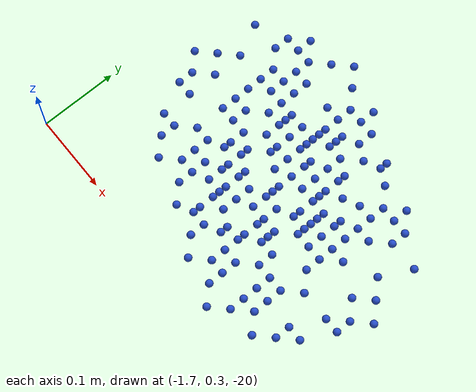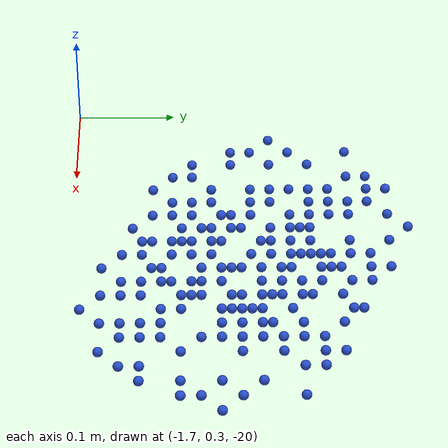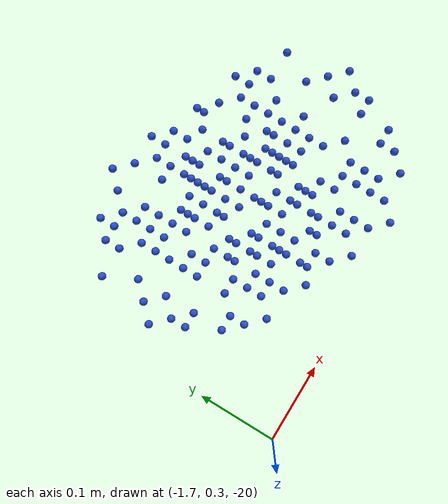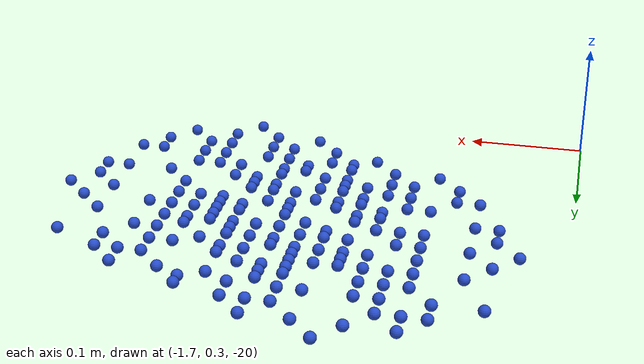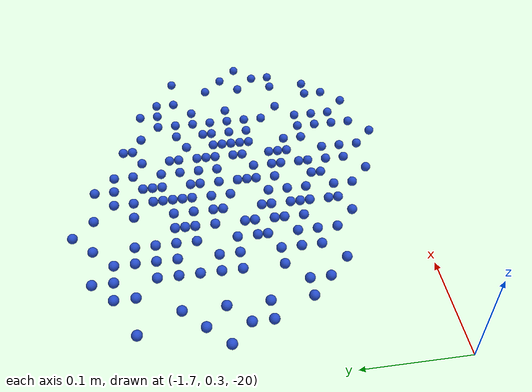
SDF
<sdf version="1.7">
 <model name="Washbasin_Water">
  <static>true</static>
  <link name="washbasin_water_inl">
   <pose>-1.52 0.5 -20 0 0 0</pose>
   <visual name="green_mark_centre1_visual">
    <geometry><sphere><radius>0.005</radius></sphere></geometry>
    <material><script><name>Gazebo/BlueGlow</name></script></material>
   </visual>
   <visual name="green_mark_centre2_visual">
    <pose>0.02 0 0 0 0 0</pose>
    <geometry><sphere><radius>0.005</radius></sphere></geometry>
    <material><script><name>Gazebo/BlueGlow</name></script></material>
   </visual>
   <visual name="green_mark_centre4_visual">
    <pose>0.04 0 0 0 0 0</pose>
    <geometry><sphere><radius>0.005</radius></sphere></geometry>
    <material><script><name>Gazebo/BlueGlow</name></script></material>
   </visual>
   <visual name="green_mark_centre5_visual">
    <pose>-0.04 0 0 0 0 0</pose>
    <geometry><sphere><radius>0.005</radius></sphere></geometry>
    <material><script><name>Gazebo/BlueGlow</name></script></material>
   </visual>
   <visual name="green_mark_centre7_visual">
    <pose>-0.06 0 0 0 0 0</pose>
    <geometry><sphere><radius>0.005</radius></sphere></geometry>
    <material><script><name>Gazebo/BlueGlow</name></script></material>
   </visual>
   <visual name="green_mark_centre8_visual">
    <pose>0 0.02 0 0 0 0</pose>
    <geometry><sphere><radius>0.005</radius></sphere></geometry>
    <material><script><name>Gazebo/BlueGlow</name></script></material>
   </visual>
   <visual name="green_mark_centre10_visual">
    <pose>0 0.04 0 0 0 0</pose>
    <geometry><sphere><radius>0.005</radius></sphere></geometry>
    <material><script><name>Gazebo/BlueGlow</name></script></material>
   </visual>
   <visual name="green_mark_centre11_visual">
    <pose>0 -0.04 0 0 0 0</pose>
    <geometry><sphere><radius>0.005</radius></sphere></geometry>
    <material><script><name>Gazebo/BlueGlow</name></script></material>
   </visual>
   <visual name="green_mark_centre13_visual">
    <pose>0 -0.06 0 0 0 0</pose>
    <geometry><sphere><radius>0.005</radius></sphere></geometry>
    <material><script><name>Gazebo/BlueGlow</name></script></material>
   </visual>
   <visual name="green_mark_centre14_visual">
    <pose>0.02 0.02 0 0 0 0</pose>
    <geometry><sphere><radius>0.005</radius></sphere></geometry>
    <material><script><name>Gazebo/BlueGlow</name></script></material>
   </visual>
   <visual name="green_mark_centre16_visual">
    <pose>-0.02 -0.02 0 0 0 0</pose>
    <geometry><sphere><radius>0.005</radius></sphere></geometry>
    <material><script><name>Gazebo/BlueGlow</name></script></material>
   </visual>
   <visual name="green_mark_centre17_visual">
    <pose>-0.02 0.02 0 0 0 0</pose>
    <geometry><sphere><radius>0.005</radius></sphere></geometry>
    <material><script><name>Gazebo/BlueGlow</name></script></material>
   </visual>
   <visual name="green_mark_centre19_visual">
    <pose>0.04 0.04 0 0 0 0</pose>
    <geometry><sphere><radius>0.005</radius></sphere></geometry>
    <material><script><name>Gazebo/BlueGlow</name></script></material>
   </visual>
   <visual name="green_mark_centre20_visual">
    <pose>-0.04 0.04 0 0 0 0</pose>
    <geometry><sphere><radius>0.005</radius></sphere></geometry>
    <material><script><name>Gazebo/BlueGlow</name></script></material>
   </visual>
   <visual name="green_mark_centre22_visual">
    <pose>0.04 0.06 0 0 0 0</pose>
    <geometry><sphere><radius>0.005</radius></sphere></geometry>
    <material><script><name>Gazebo/BlueGlow</name></script></material>
   </visual>
   <visual name="green_mark_centre23_visual">
    <pose>0.04 -0.06 0 0 0 0</pose>
    <geometry><sphere><radius>0.005</radius></sphere></geometry>
    <material><script><name>Gazebo/BlueGlow</name></script></material>
   </visual>
   <visual name="green_mark_centre25_visual">
    <pose>-0.04 0.06 0 0 0 0</pose>
    <geometry><sphere><radius>0.005</radius></sphere></geometry>
    <material><script><name>Gazebo/BlueGlow</name></script></material>
   </visual>
   <visual name="green_mark_centre26_visual">
    <pose>-0.04 -0.06 0 0 0 0</pose>
    <geometry><sphere><radius>0.005</radius></sphere></geometry>
    <material><script><name>Gazebo/BlueGlow</name></script></material>
   </visual>
   <visual name="green_mark_centre28_visual">
    <pose>0.06 0.06 0 0 0 0</pose>
    <geometry><sphere><radius>0.005</radius></sphere></geometry>
    <material><script><name>Gazebo/BlueGlow</name></script></material>
   </visual>
   <visual name="green_mark_centre29_visual">
    <pose>-0.06 0.06 0 0 0 0</pose>
    <geometry><sphere><radius>0.005</radius></sphere></geometry>
    <material><script><name>Gazebo/BlueGlow</name></script></material>
   </visual>
   <visual name="green_mark_centre31_visual">
    <pose>-0.06 -0.06 0 0 0 0</pose>
    <geometry><sphere><radius>0.005</radius></sphere></geometry>
    <material><script><name>Gazebo/BlueGlow</name></script></material>
   </visual>
   <visual name="green_mark_centre32_visual">
    <pose>0.02 0.04 0 0 0 0</pose>
    <geometry><sphere><radius>0.005</radius></sphere></geometry>
    <material><script><name>Gazebo/BlueGlow</name></script></material>
   </visual>
   <visual name="green_mark_centre34_visual">
    <pose>-0.02 0.04 0 0 0 0</pose>
    <geometry><sphere><radius>0.005</radius></sphere></geometry>
    <material><script><name>Gazebo/BlueGlow</name></script></material>
   </visual>
   <visual name="green_mark_centre35_visual">
    <pose>-0.02 -0.04 0 0 0 0</pose>
    <geometry><sphere><radius>0.005</radius></sphere></geometry>
    <material><script><name>Gazebo/BlueGlow</name></script></material>
   </visual>
   <visual name="green_mark_centre37_visual">
    <pose>0.02 -0.06 0 0 0 0</pose>
    <geometry><sphere><radius>0.005</radius></sphere></geometry>
    <material><script><name>Gazebo/BlueGlow</name></script></material>
   </visual>
   <visual name="green_mark_centre38_visual">
    <pose>-0.02 0.06 0 0 0 0</pose>
    <geometry><sphere><radius>0.005</radius></sphere></geometry>
    <material><script><name>Gazebo/BlueGlow</name></script></material>
   </visual>
   <visual name="green_mark_centre40_visual">
    <pose>0.04 0.02 0 0 0 0</pose>
    <geometry><sphere><radius>0.005</radius></sphere></geometry>
    <material><script><name>Gazebo/BlueGlow</name></script></material>
   </visual>
   <visual name="green_mark_centre41_visual">
    <pose>0.04 -0.02 0 0 0 0</pose>
    <geometry><sphere><radius>0.005</radius></sphere></geometry>
    <material><script><name>Gazebo/BlueGlow</name></script></material>
   </visual>
   <visual name="green_mark_centre43_visual">
    <pose>-0.04 -0.02 0 0 0 0</pose>
    <geometry><sphere><radius>0.005</radius></sphere></geometry>
    <material><script><name>Gazebo/BlueGlow</name></script></material>
   </visual>
   <visual name="green_mark_centre44_visual">
    <pose>0.06 0.02 0 0 0 0</pose>
    <geometry><sphere><radius>0.005</radius></sphere></geometry>
    <material><script><name>Gazebo/BlueGlow</name></script></material>
   </visual>
   <visual name="green_mark_centre46_visual">
    <pose>-0.06 0.02 0 0 0 0</pose>
    <geometry><sphere><radius>0.005</radius></sphere></geometry>
    <material><script><name>Gazebo/BlueGlow</name></script></material>
   </visual>
   <visual name="green_mark_centre47_visual">
    <pose>-0.06 -0.02 0 0 0 0</pose>
    <geometry><sphere><radius>0.005</radius></sphere></geometry>
    <material><script><name>Gazebo/BlueGlow</name></script></material>
   </visual>
   <visual name="green_mark_centre49_visual">
    <pose>0.06 -0.04 0 0 0 0</pose>
    <geometry><sphere><radius>0.005</radius></sphere></geometry>
    <material><script><name>Gazebo/BlueGlow</name></script></material>
   </visual>
   <visual name="green_mark_centre50_visual">
    <pose>-0.06 0.04 0 0 0 0</pose>
    <geometry><sphere><radius>0.005</radius></sphere></geometry>
    <material><script><name>Gazebo/BlueGlow</name></script></material>
   </visual>
   <visual name="green_mark_top1_visual">
    <pose>-0.06 0.12 0 0 0 0</pose>
    <geometry><sphere><radius>0.005</radius></sphere></geometry>
    <material><script><name>Gazebo/BlueGlow</name></script></material>
   </visual>
   <visual name="green_mark_top2_visual">
    <pose>-0.06 0.10 0 0 0 0</pose>
    <geometry><sphere><radius>0.005</radius></sphere></geometry>
    <material><script><name>Gazebo/BlueGlow</name></script></material>
   </visual>
   <visual name="green_mark_top4_visual">
    <pose>-0.04 0.10 0 0 0 0</pose>
    <geometry><sphere><radius>0.005</radius></sphere></geometry>
    <material><script><name>Gazebo/BlueGlow</name></script></material>
   </visual>
   <visual name="green_mark_top7_visual">
    <pose>-0.04 0.08 0 0 0 0</pose>
    <geometry><sphere><radius>0.005</radius></sphere></geometry>
    <material><script><name>Gazebo/BlueGlow</name></script></material>
   </visual>
   <visual name="green_mark_top8_visual">
    <pose>-0.02 0.12 0 0 0 0</pose>
    <geometry><sphere><radius>0.005</radius></sphere></geometry>
    <material><script><name>Gazebo/BlueGlow</name></script></material>
   </visual>
   <visual name="green_mark_top10_visual">
    <pose>-0.02 0.12 0 0 0 0</pose>
    <geometry><sphere><radius>0.005</radius></sphere></geometry>
    <material><script><name>Gazebo/BlueGlow</name></script></material>
   </visual>
   <visual name="green_mark_top12_visual">
    <pose>-0.02 0.08 0 0 0 0</pose>
    <geometry><sphere><radius>0.005</radius></sphere></geometry>
    <material><script><name>Gazebo/BlueGlow</name></script></material>
   </visual>
   <visual name="green_mark_top14_visual">
    <pose>0.06 0.12 0 0 0 0</pose>
    <geometry><sphere><radius>0.005</radius></sphere></geometry>
    <material><script><name>Gazebo/BlueGlow</name></script></material>
   </visual>
   <visual name="green_mark_top15_visual">
    <pose>0.06 0.10 0 0 0 0</pose>
    <geometry><sphere><radius>0.005</radius></sphere></geometry>
    <material><script><name>Gazebo/BlueGlow</name></script></material>
   </visual>
   <visual name="green_mark_top17_visual">
    <pose>0.04 0.10 0 0 0 0</pose>
    <geometry><sphere><radius>0.005</radius></sphere></geometry>
    <material><script><name>Gazebo/BlueGlow</name></script></material>
   </visual>
   <visual name="green_mark_top20_visual">
    <pose>0.04 0.08 0 0 0 0</pose>
    <geometry><sphere><radius>0.005</radius></sphere></geometry>
    <material><script><name>Gazebo/BlueGlow</name></script></material>
   </visual>
   <visual name="green_mark_top21_visual">
    <pose>0.02 0.12 0 0 0 0</pose>
    <geometry><sphere><radius>0.005</radius></sphere></geometry>
    <material><script><name>Gazebo/BlueGlow</name></script></material>
   </visual>
   <visual name="green_mark_top23_visual">
    <pose>0.02 0.12 0 0 0 0</pose>
    <geometry><sphere><radius>0.005</radius></sphere></geometry>
    <material><script><name>Gazebo/BlueGlow</name></script></material>
   </visual>
   <visual name="green_mark_top25_visual">
    <pose>0.02 0.08 0 0 0 0</pose>
    <geometry><sphere><radius>0.005</radius></sphere></geometry>
    <material><script><name>Gazebo/BlueGlow</name></script></material>
   </visual>
   <visual name="green_mark_top88_visual">
    <pose>0.0 0.14 0 0 0 0</pose>
    <geometry><sphere><radius>0.005</radius></sphere></geometry>
    <material><script><name>Gazebo/BlueGlow</name></script></material>
   </visual>
   <visual name="green_mark_top89_visual">
    <pose>0.0 -0.14 0 0 0 0</pose>
    <geometry><sphere><radius>0.005</radius></sphere></geometry>
    <material><script><name>Gazebo/BlueGlow</name></script></material>
   </visual>
   <visual name="green_mark_top3_visual">
    <pose>-0.06 -0.12 0 0 0 0</pose>
    <geometry><sphere><radius>0.005</radius></sphere></geometry>
    <material><script><name>Gazebo/BlueGlow</name></script></material>
   </visual>
   <visual name="green_mark_top5_visual">
    <pose>-0.04 -0.10 0 0 0 0</pose>
    <geometry><sphere><radius>0.005</radius></sphere></geometry>
    <material><script><name>Gazebo/BlueGlow</name></script></material>
   </visual>
   <visual name="green_mark_top6_visual">
    <pose>-0.04 -0.08 0 0 0 0</pose>
    <geometry><sphere><radius>0.005</radius></sphere></geometry>
    <material><script><name>Gazebo/BlueGlow</name></script></material>
   </visual>
   <visual name="green_mark_top9_visual">
    <pose>-0.02 -0.12 0 0 0 0</pose>
    <geometry><sphere><radius>0.005</radius></sphere></geometry>
    <material><script><name>Gazebo/BlueGlow</name></script></material>
   </visual>
   <visual name="green_mark_top11_visual">
    <pose>-0.02 -0.10 0 0 0 0</pose>
    <geometry><sphere><radius>0.005</radius></sphere></geometry>
    <material><script><name>Gazebo/BlueGlow</name></script></material>
   </visual>
   <visual name="green_mark_top13_visual">
    <pose>-0.02 -0.08 0 0 0 0</pose>
    <geometry><sphere><radius>0.005</radius></sphere></geometry>
    <material><script><name>Gazebo/BlueGlow</name></script></material>
   </visual>
   <visual name="green_mark_top6_visual">
    <pose>-0.04 -0.08 0 0 0 0</pose>
    <geometry><sphere><radius>0.005</radius></sphere></geometry>
    <material><script><name>Gazebo/BlueGlow</name></script></material>
   </visual>
   <visual name="green_mark_top16_visual">
    <pose>0.06 -0.12 0 0 0 0</pose>
    <geometry><sphere><radius>0.005</radius></sphere></geometry>
    <material><script><name>Gazebo/BlueGlow</name></script></material>
   </visual>
   <visual name="green_mark_top18_visual">
    <pose>0.04 -0.10 0 0 0 0</pose>
    <geometry><sphere><radius>0.005</radius></sphere></geometry>
    <material><script><name>Gazebo/BlueGlow</name></script></material>
   </visual>
   <visual name="green_mark_top19_visual">
    <pose>0.04 -0.08 0 0 0 0</pose>
    <geometry><sphere><radius>0.005</radius></sphere></geometry>
    <material><script><name>Gazebo/BlueGlow</name></script></material>
   </visual>
   <visual name="green_mark_top22_visual">
    <pose>0.02 -0.12 0 0 0 0</pose>
    <geometry><sphere><radius>0.005</radius></sphere></geometry>
    <material><script><name>Gazebo/BlueGlow</name></script></material>
   </visual>
   <visual name="green_mark_top24_visual">
    <pose>0.02 -0.10 0 0 0 0</pose>
    <geometry><sphere><radius>0.005</radius></sphere></geometry>
    <material><script><name>Gazebo/BlueGlow</name></script></material>
   </visual>
   <visual name="green_mark_top26_visual">
    <pose>0.02 -0.08 0 0 0 0</pose>
    <geometry><sphere><radius>0.005</radius></sphere></geometry>
    <material><script><name>Gazebo/BlueGlow</name></script></material>
   </visual>
   <visual name="green_mark_top3_visual">
    <pose>-0.14 0 0 0 0 0</pose>
    <geometry><sphere><radius>0.005</radius></sphere></geometry>
    <material><script><name>Gazebo/BlueGlow</name></script></material>
   </visual>
   <visual name="green_mark_top365_visual">
    <pose>-0.12 0.08 0 0 0 0</pose>
    <geometry><sphere><radius>0.005</radius></sphere></geometry>
    <material><script><name>Gazebo/BlueGlow</name></script></material>
   </visual>
   <visual name="green_mark_top93_visual">
    <pose>-0.10 0 0 0 0 0</pose>
    <geometry><sphere><radius>0.005</radius></sphere></geometry>
    <material><script><name>Gazebo/BlueGlow</name></script></material>
   </visual>
   <visual name="green_mark_top5_visual">
    <pose>-0.12 0.02 0 0 0 0</pose>
    <geometry><sphere><radius>0.005</radius></sphere></geometry>
    <material><script><name>Gazebo/BlueGlow</name></script></material>
   </visual>
   <visual name="green_mark_top6_visual">
    <pose>-0.10 0.04 0 0 0 0</pose>
    <geometry><sphere><radius>0.005</radius></sphere></geometry>
    <material><script><name>Gazebo/BlueGlow</name></script></material>
   </visual>
   <visual name="green_mark_top20_visual">
    <pose>-0.08 0.10 0 0 0 0</pose>
    <geometry><sphere><radius>0.005</radius></sphere></geometry>
    <material><script><name>Gazebo/BlueGlow</name></script></material>
   </visual>
   <visual name="green_mark_top50_visual">
    <pose>-0.08 0.08 0 0 0 0</pose>
    <geometry><sphere><radius>0.005</radius></sphere></geometry>
    <material><script><name>Gazebo/BlueGlow</name></script></material>
   </visual>
   <visual name="green_mark_top3_visual">
    <pose>-0.12 -0.04 0 0 0 0</pose>
    <geometry><sphere><radius>0.005</radius></sphere></geometry>
    <material><script><name>Gazebo/BlueGlow</name></script></material>
   </visual>
   <visual name="green_mark_top5_visual">
    <pose>-0.12 -0.02 0 0 0 0</pose>
    <geometry><sphere><radius>0.005</radius></sphere></geometry>
    <material><script><name>Gazebo/BlueGlow</name></script></material>
   </visual>
   <visual name="green_mark_top6_visual">
    <pose>-0.10 -0.04 0 0 0 0</pose>
    <geometry><sphere><radius>0.005</radius></sphere></geometry>
    <material><script><name>Gazebo/BlueGlow</name></script></material>
   </visual>
   <visual name="green_mark_top6_visual">
    <pose>-0.10 -0.08 0 0 0 0</pose>
    <geometry><sphere><radius>0.005</radius></sphere></geometry>
    <material><script><name>Gazebo/BlueGlow</name></script></material>
   </visual>
   <visual name="green_mark_top20_visual">
    <pose>-0.08 -0.10 0 0 0 0</pose>
    <geometry><sphere><radius>0.005</radius></sphere></geometry>
    <material><script><name>Gazebo/BlueGlow</name></script></material>
   </visual>
   <visual name="green_mark_top50_visual">
    <pose>-0.08 -0.08 0 0 0 0</pose>
    <geometry><sphere><radius>0.005</radius></sphere></geometry>
    <material><script><name>Gazebo/BlueGlow</name></script></material>
   </visual>
   <visual name="green_mark_top3_visual">
    <pose>0.14 0 0 0 0 0</pose>
    <geometry><sphere><radius>0.005</radius></sphere></geometry>
    <material><script><name>Gazebo/BlueGlow</name></script></material>
   </visual>
   <visual name="green_mark_top365_visual">
    <pose>0.12 0.08 0 0 0 0</pose>
    <geometry><sphere><radius>0.005</radius></sphere></geometry>
    <material><script><name>Gazebo/BlueGlow</name></script></material>
   </visual>
   <visual name="green_mark_top93_visual">
    <pose>0.10 0 0 0 0 0</pose>
    <geometry><sphere><radius>0.005</radius></sphere></geometry>
    <material><script><name>Gazebo/BlueGlow</name></script></material>
   </visual>
   <visual name="green_mark_top5_visual">
    <pose>0.12 0.02 0 0 0 0</pose>
    <geometry><sphere><radius>0.005</radius></sphere></geometry>
    <material><script><name>Gazebo/BlueGlow</name></script></material>
   </visual>
   <visual name="green_mark_top6_visual">
    <pose>0.10 0.04 0 0 0 0</pose>
    <geometry><sphere><radius>0.005</radius></sphere></geometry>
    <material><script><name>Gazebo/BlueGlow</name></script></material>
   </visual>
   <visual name="green_mark_top20_visual">
    <pose>0.08 0.10 0 0 0 0</pose>
    <geometry><sphere><radius>0.005</radius></sphere></geometry>
    <material><script><name>Gazebo/BlueGlow</name></script></material>
   </visual>
   <visual name="green_mark_top50_visual">
    <pose>0.08 0.08 0 0 0 0</pose>
    <geometry><sphere><radius>0.005</radius></sphere></geometry>
    <material><script><name>Gazebo/BlueGlow</name></script></material>
   </visual>
   <visual name="green_mark_top3_visual">
    <pose>0.12 -0.04 0 0 0 0</pose>
    <geometry><sphere><radius>0.005</radius></sphere></geometry>
    <material><script><name>Gazebo/BlueGlow</name></script></material>
   </visual>
   <visual name="green_mark_top5_visual">
    <pose>0.12 -0.02 0 0 0 0</pose>
    <geometry><sphere><radius>0.005</radius></sphere></geometry>
    <material><script><name>Gazebo/BlueGlow</name></script></material>
   </visual>
   <visual name="green_mark_top6_visual">
    <pose>0.10 -0.04 0 0 0 0</pose>
    <geometry><sphere><radius>0.005</radius></sphere></geometry>
    <material><script><name>Gazebo/BlueGlow</name></script></material>
   </visual>
   <visual name="green_mark_top6_visual">
    <pose>0.10 -0.08 0 0 0 0</pose>
    <geometry><sphere><radius>0.005</radius></sphere></geometry>
    <material><script><name>Gazebo/BlueGlow</name></script></material>
   </visual>
   <visual name="green_mark_top20_visual">
    <pose>0.08 -0.10 0 0 0 0</pose>
    <geometry><sphere><radius>0.005</radius></sphere></geometry>
    <material><script><name>Gazebo/BlueGlow</name></script></material>
   </visual>
   <visual name="green_mark_top50_visual">
    <pose>0.08 -0.08 0 0 0 0</pose>
    <geometry><sphere><radius>0.005</radius></sphere></geometry>
    <material><script><name>Gazebo/BlueGlow</name></script></material>
   </visual>
  </link>
  <link name="washbasin_water_inc">
   <pose>-1.4 0.45 -20 0 0 0</pose>
   <visual name="green_mark_centre1_visual">
    <geometry><sphere><radius>0.005</radius></sphere></geometry>
    <material><script><name>Gazebo/BlueGlow</name></script></material>
   </visual>
   <visual name="green_mark_centre2_visual">
    <pose>0.02 0 0 0 0 0</pose>
    <geometry><sphere><radius>0.005</radius></sphere></geometry>
    <material><script><name>Gazebo/BlueGlow</name></script></material>
   </visual>
   <visual name="green_mark_centre4_visual">
    <pose>0.04 0 0 0 0 0</pose>
    <geometry><sphere><radius>0.005</radius></sphere></geometry>
    <material><script><name>Gazebo/BlueGlow</name></script></material>
   </visual>
   <visual name="green_mark_centre5_visual">
    <pose>-0.04 0 0 0 0 0</pose>
    <geometry><sphere><radius>0.005</radius></sphere></geometry>
    <material><script><name>Gazebo/BlueGlow</name></script></material>
   </visual>
   <visual name="green_mark_centre7_visual">
    <pose>-0.06 0 0 0 0 0</pose>
    <geometry><sphere><radius>0.005</radius></sphere></geometry>
    <material><script><name>Gazebo/BlueGlow</name></script></material>
   </visual>
   <visual name="green_mark_centre8_visual">
    <pose>0 0.02 0 0 0 0</pose>
    <geometry><sphere><radius>0.005</radius></sphere></geometry>
    <material><script><name>Gazebo/BlueGlow</name></script></material>
   </visual>
   <visual name="green_mark_centre10_visual">
    <pose>0 0.04 0 0 0 0</pose>
    <geometry><sphere><radius>0.005</radius></sphere></geometry>
    <material><script><name>Gazebo/BlueGlow</name></script></material>
   </visual>
   <visual name="green_mark_centre11_visual">
    <pose>0 -0.04 0 0 0 0</pose>
    <geometry><sphere><radius>0.005</radius></sphere></geometry>
    <material><script><name>Gazebo/BlueGlow</name></script></material>
   </visual>
   <visual name="green_mark_centre13_visual">
    <pose>0 -0.06 0 0 0 0</pose>
    <geometry><sphere><radius>0.005</radius></sphere></geometry>
    <material><script><name>Gazebo/BlueGlow</name></script></material>
   </visual>
   <visual name="green_mark_centre14_visual">
    <pose>0.02 0.02 0 0 0 0</pose>
    <geometry><sphere><radius>0.005</radius></sphere></geometry>
    <material><script><name>Gazebo/BlueGlow</name></script></material>
   </visual>
   <visual name="green_mark_centre16_visual">
    <pose>-0.02 -0.02 0 0 0 0</pose>
    <geometry><sphere><radius>0.005</radius></sphere></geometry>
    <material><script><name>Gazebo/BlueGlow</name></script></material>
   </visual>
   <visual name="green_mark_centre17_visual">
    <pose>-0.02 0.02 0 0 0 0</pose>
    <geometry><sphere><radius>0.005</radius></sphere></geometry>
    <material><script><name>Gazebo/BlueGlow</name></script></material>
   </visual>
   <visual name="green_mark_centre19_visual">
    <pose>0.04 0.04 0 0 0 0</pose>
    <geometry><sphere><radius>0.005</radius></sphere></geometry>
    <material><script><name>Gazebo/BlueGlow</name></script></material>
   </visual>
   <visual name="green_mark_centre20_visual">
    <pose>-0.04 0.04 0 0 0 0</pose>
    <geometry><sphere><radius>0.005</radius></sphere></geometry>
    <material><script><name>Gazebo/BlueGlow</name></script></material>
   </visual>
   <visual name="green_mark_centre22_visual">
    <pose>0.04 0.06 0 0 0 0</pose>
    <geometry><sphere><radius>0.005</radius></sphere></geometry>
    <material><script><name>Gazebo/BlueGlow</name></script></material>
   </visual>
   <visual name="green_mark_centre23_visual">
    <pose>0.04 -0.06 0 0 0 0</pose>
    <geometry><sphere><radius>0.005</radius></sphere></geometry>
    <material><script><name>Gazebo/BlueGlow</name></script></material>
   </visual>
   <visual name="green_mark_centre25_visual">
    <pose>-0.04 0.06 0 0 0 0</pose>
    <geometry><sphere><radius>0.005</radius></sphere></geometry>
    <material><script><name>Gazebo/BlueGlow</name></script></material>
   </visual>
   <visual name="green_mark_centre26_visual">
    <pose>-0.04 -0.06 0 0 0 0</pose>
    <geometry><sphere><radius>0.005</radius></sphere></geometry>
    <material><script><name>Gazebo/BlueGlow</name></script></material>
   </visual>
   <visual name="green_mark_centre28_visual">
    <pose>0.06 0.06 0 0 0 0</pose>
    <geometry><sphere><radius>0.005</radius></sphere></geometry>
    <material><script><name>Gazebo/BlueGlow</name></script></material>
   </visual>
   <visual name="green_mark_centre29_visual">
    <pose>-0.06 0.06 0 0 0 0</pose>
    <geometry><sphere><radius>0.005</radius></sphere></geometry>
    <material><script><name>Gazebo/BlueGlow</name></script></material>
   </visual>
   <visual name="green_mark_centre31_visual">
    <pose>-0.06 -0.06 0 0 0 0</pose>
    <geometry><sphere><radius>0.005</radius></sphere></geometry>
    <material><script><name>Gazebo/BlueGlow</name></script></material>
   </visual>
   <visual name="green_mark_centre32_visual">
    <pose>0.02 0.04 0 0 0 0</pose>
    <geometry><sphere><radius>0.005</radius></sphere></geometry>
    <material><script><name>Gazebo/BlueGlow</name></script></material>
   </visual>
   <visual name="green_mark_centre34_visual">
    <pose>-0.02 0.04 0 0 0 0</pose>
    <geometry><sphere><radius>0.005</radius></sphere></geometry>
    <material><script><name>Gazebo/BlueGlow</name></script></material>
   </visual>
   <visual name="green_mark_centre35_visual">
    <pose>-0.02 -0.04 0 0 0 0</pose>
    <geometry><sphere><radius>0.005</radius></sphere></geometry>
    <material><script><name>Gazebo/BlueGlow</name></script></material>
   </visual>
   <visual name="green_mark_centre37_visual">
    <pose>0.02 -0.06 0 0 0 0</pose>
    <geometry><sphere><radius>0.005</radius></sphere></geometry>
    <material><script><name>Gazebo/BlueGlow</name></script></material>
   </visual>
   <visual name="green_mark_centre38_visual">
    <pose>-0.02 0.06 0 0 0 0</pose>
    <geometry><sphere><radius>0.005</radius></sphere></geometry>
    <material><script><name>Gazebo/BlueGlow</name></script></material>
   </visual>
   <visual name="green_mark_centre40_visual">
    <pose>0.04 0.02 0 0 0 0</pose>
    <geometry><sphere><radius>0.005</radius></sphere></geometry>
    <material><script><name>Gazebo/BlueGlow</name></script></material>
   </visual>
   <visual name="green_mark_centre41_visual">
    <pose>0.04 -0.02 0 0 0 0</pose>
    <geometry><sphere><radius>0.005</radius></sphere></geometry>
    <material><script><name>Gazebo/BlueGlow</name></script></material>
   </visual>
   <visual name="green_mark_centre43_visual">
    <pose>-0.04 -0.02 0 0 0 0</pose>
    <geometry><sphere><radius>0.005</radius></sphere></geometry>
    <material><script><name>Gazebo/BlueGlow</name></script></material>
   </visual>
   <visual name="green_mark_centre44_visual">
    <pose>0.06 0.02 0 0 0 0</pose>
    <geometry><sphere><radius>0.005</radius></sphere></geometry>
    <material><script><name>Gazebo/BlueGlow</name></script></material>
   </visual>
   <visual name="green_mark_centre46_visual">
    <pose>-0.06 0.02 0 0 0 0</pose>
    <geometry><sphere><radius>0.005</radius></sphere></geometry>
    <material><script><name>Gazebo/BlueGlow</name></script></material>
   </visual>
   <visual name="green_mark_centre47_visual">
    <pose>-0.06 -0.02 0 0 0 0</pose>
    <geometry><sphere><radius>0.005</radius></sphere></geometry>
    <material><script><name>Gazebo/BlueGlow</name></script></material>
   </visual>
   <visual name="green_mark_centre49_visual">
    <pose>0.06 -0.04 0 0 0 0</pose>
    <geometry><sphere><radius>0.005</radius></sphere></geometry>
    <material><script><name>Gazebo/BlueGlow</name></script></material>
   </visual>
   <visual name="green_mark_centre50_visual">
    <pose>-0.06 0.04 0 0 0 0</pose>
    <geometry><sphere><radius>0.005</radius></sphere></geometry>
    <material><script><name>Gazebo/BlueGlow</name></script></material>
   </visual>
   <visual name="green_mark_top1_visual">
    <pose>-0.06 0.12 0 0 0 0</pose>
    <geometry><sphere><radius>0.005</radius></sphere></geometry>
    <material><script><name>Gazebo/BlueGlow</name></script></material>
   </visual>
   <visual name="green_mark_top2_visual">
    <pose>-0.06 0.10 0 0 0 0</pose>
    <geometry><sphere><radius>0.005</radius></sphere></geometry>
    <material><script><name>Gazebo/BlueGlow</name></script></material>
   </visual>
   <visual name="green_mark_top4_visual">
    <pose>-0.04 0.10 0 0 0 0</pose>
    <geometry><sphere><radius>0.005</radius></sphere></geometry>
    <material><script><name>Gazebo/BlueGlow</name></script></material>
   </visual>
   <visual name="green_mark_top7_visual">
    <pose>-0.04 0.08 0 0 0 0</pose>
    <geometry><sphere><radius>0.005</radius></sphere></geometry>
    <material><script><name>Gazebo/BlueGlow</name></script></material>
   </visual>
   <visual name="green_mark_top8_visual">
    <pose>-0.02 0.12 0 0 0 0</pose>
    <geometry><sphere><radius>0.005</radius></sphere></geometry>
    <material><script><name>Gazebo/BlueGlow</name></script></material>
   </visual>
   <visual name="green_mark_top10_visual">
    <pose>-0.02 0.12 0 0 0 0</pose>
    <geometry><sphere><radius>0.005</radius></sphere></geometry>
    <material><script><name>Gazebo/BlueGlow</name></script></material>
   </visual>
   <visual name="green_mark_top12_visual">
    <pose>-0.02 0.08 0 0 0 0</pose>
    <geometry><sphere><radius>0.005</radius></sphere></geometry>
    <material><script><name>Gazebo/BlueGlow</name></script></material>
   </visual>
   <visual name="green_mark_top14_visual">
    <pose>0.06 0.12 0 0 0 0</pose>
    <geometry><sphere><radius>0.005</radius></sphere></geometry>
    <material><script><name>Gazebo/BlueGlow</name></script></material>
   </visual>
   <visual name="green_mark_top15_visual">
    <pose>0.06 0.10 0 0 0 0</pose>
    <geometry><sphere><radius>0.005</radius></sphere></geometry>
    <material><script><name>Gazebo/BlueGlow</name></script></material>
   </visual>
   <visual name="green_mark_top17_visual">
    <pose>0.04 0.10 0 0 0 0</pose>
    <geometry><sphere><radius>0.005</radius></sphere></geometry>
    <material><script><name>Gazebo/BlueGlow</name></script></material>
   </visual>
   <visual name="green_mark_top20_visual">
    <pose>0.04 0.08 0 0 0 0</pose>
    <geometry><sphere><radius>0.005</radius></sphere></geometry>
    <material><script><name>Gazebo/BlueGlow</name></script></material>
   </visual>
   <visual name="green_mark_top21_visual">
    <pose>0.02 0.12 0 0 0 0</pose>
    <geometry><sphere><radius>0.005</radius></sphere></geometry>
    <material><script><name>Gazebo/BlueGlow</name></script></material>
   </visual>
   <visual name="green_mark_top23_visual">
    <pose>0.02 0.12 0 0 0 0</pose>
    <geometry><sphere><radius>0.005</radius></sphere></geometry>
    <material><script><name>Gazebo/BlueGlow</name></script></material>
   </visual>
   <visual name="green_mark_top25_visual">
    <pose>0.02 0.08 0 0 0 0</pose>
    <geometry><sphere><radius>0.005</radius></sphere></geometry>
    <material><script><name>Gazebo/BlueGlow</name></script></material>
   </visual>
   <visual name="green_mark_top88_visual">
    <pose>0.0 0.14 0 0 0 0</pose>
    <geometry><sphere><radius>0.005</radius></sphere></geometry>
    <material><script><name>Gazebo/BlueGlow</name></script></material>
   </visual>
   <visual name="green_mark_top89_visual">
    <pose>0.0 -0.14 0 0 0 0</pose>
    <geometry><sphere><radius>0.005</radius></sphere></geometry>
    <material><script><name>Gazebo/BlueGlow</name></script></material>
   </visual>
   <visual name="green_mark_top3_visual">
    <pose>-0.06 -0.12 0 0 0 0</pose>
    <geometry><sphere><radius>0.005</radius></sphere></geometry>
    <material><script><name>Gazebo/BlueGlow</name></script></material>
   </visual>
   <visual name="green_mark_top5_visual">
    <pose>-0.04 -0.10 0 0 0 0</pose>
    <geometry><sphere><radius>0.005</radius></sphere></geometry>
    <material><script><name>Gazebo/BlueGlow</name></script></material>
   </visual>
   <visual name="green_mark_top6_visual">
    <pose>-0.04 -0.08 0 0 0 0</pose>
    <geometry><sphere><radius>0.005</radius></sphere></geometry>
    <material><script><name>Gazebo/BlueGlow</name></script></material>
   </visual>
   <visual name="green_mark_top9_visual">
    <pose>-0.02 -0.12 0 0 0 0</pose>
    <geometry><sphere><radius>0.005</radius></sphere></geometry>
    <material><script><name>Gazebo/BlueGlow</name></script></material>
   </visual>
   <visual name="green_mark_top11_visual">
    <pose>-0.02 -0.10 0 0 0 0</pose>
    <geometry><sphere><radius>0.005</radius></sphere></geometry>
    <material><script><name>Gazebo/BlueGlow</name></script></material>
   </visual>
   <visual name="green_mark_top13_visual">
    <pose>-0.02 -0.08 0 0 0 0</pose>
    <geometry><sphere><radius>0.005</radius></sphere></geometry>
    <material><script><name>Gazebo/BlueGlow</name></script></material>
   </visual>
   <visual name="green_mark_top6_visual">
    <pose>-0.04 -0.08 0 0 0 0</pose>
    <geometry><sphere><radius>0.005</radius></sphere></geometry>
    <material><script><name>Gazebo/BlueGlow</name></script></material>
   </visual>
   <visual name="green_mark_top16_visual">
    <pose>0.06 -0.12 0 0 0 0</pose>
    <geometry><sphere><radius>0.005</radius></sphere></geometry>
    <material><script><name>Gazebo/BlueGlow</name></script></material>
   </visual>
   <visual name="green_mark_top18_visual">
    <pose>0.04 -0.10 0 0 0 0</pose>
    <geometry><sphere><radius>0.005</radius></sphere></geometry>
    <material><script><name>Gazebo/BlueGlow</name></script></material>
   </visual>
   <visual name="green_mark_top19_visual">
    <pose>0.04 -0.08 0 0 0 0</pose>
    <geometry><sphere><radius>0.005</radius></sphere></geometry>
    <material><script><name>Gazebo/BlueGlow</name></script></material>
   </visual>
   <visual name="green_mark_top22_visual">
    <pose>0.02 -0.12 0 0 0 0</pose>
    <geometry><sphere><radius>0.005</radius></sphere></geometry>
    <material><script><name>Gazebo/BlueGlow</name></script></material>
   </visual>
   <visual name="green_mark_top24_visual">
    <pose>0.02 -0.10 0 0 0 0</pose>
    <geometry><sphere><radius>0.005</radius></sphere></geometry>
    <material><script><name>Gazebo/BlueGlow</name></script></material>
   </visual>
   <visual name="green_mark_top26_visual">
    <pose>0.02 -0.08 0 0 0 0</pose>
    <geometry><sphere><radius>0.005</radius></sphere></geometry>
    <material><script><name>Gazebo/BlueGlow</name></script></material>
   </visual>
   <visual name="green_mark_top3_visual">
    <pose>-0.14 0 0 0 0 0</pose>
    <geometry><sphere><radius>0.005</radius></sphere></geometry>
    <material><script><name>Gazebo/BlueGlow</name></script></material>
   </visual>
   <visual name="green_mark_top365_visual">
    <pose>-0.12 0.08 0 0 0 0</pose>
    <geometry><sphere><radius>0.005</radius></sphere></geometry>
    <material><script><name>Gazebo/BlueGlow</name></script></material>
   </visual>
   <visual name="green_mark_top93_visual">
    <pose>-0.10 0 0 0 0 0</pose>
    <geometry><sphere><radius>0.005</radius></sphere></geometry>
    <material><script><name>Gazebo/BlueGlow</name></script></material>
   </visual>
   <visual name="green_mark_top5_visual">
    <pose>-0.12 0.02 0 0 0 0</pose>
    <geometry><sphere><radius>0.005</radius></sphere></geometry>
    <material><script><name>Gazebo/BlueGlow</name></script></material>
   </visual>
   <visual name="green_mark_top6_visual">
    <pose>-0.10 0.04 0 0 0 0</pose>
    <geometry><sphere><radius>0.005</radius></sphere></geometry>
    <material><script><name>Gazebo/BlueGlow</name></script></material>
   </visual>
   <visual name="green_mark_top20_visual">
    <pose>-0.08 0.10 0 0 0 0</pose>
    <geometry><sphere><radius>0.005</radius></sphere></geometry>
    <material><script><name>Gazebo/BlueGlow</name></script></material>
   </visual>
   <visual name="green_mark_top50_visual">
    <pose>-0.08 0.08 0 0 0 0</pose>
    <geometry><sphere><radius>0.005</radius></sphere></geometry>
    <material><script><name>Gazebo/BlueGlow</name></script></material>
   </visual>
   <visual name="green_mark_top3_visual">
    <pose>-0.12 -0.04 0 0 0 0</pose>
    <geometry><sphere><radius>0.005</radius></sphere></geometry>
    <material><script><name>Gazebo/BlueGlow</name></script></material>
   </visual>
   <visual name="green_mark_top5_visual">
    <pose>-0.12 -0.02 0 0 0 0</pose>
    <geometry><sphere><radius>0.005</radius></sphere></geometry>
    <material><script><name>Gazebo/BlueGlow</name></script></material>
   </visual>
   <visual name="green_mark_top6_visual">
    <pose>-0.10 -0.04 0 0 0 0</pose>
    <geometry><sphere><radius>0.005</radius></sphere></geometry>
    <material><script><name>Gazebo/BlueGlow</name></script></material>
   </visual>
   <visual name="green_mark_top6_visual">
    <pose>-0.10 -0.08 0 0 0 0</pose>
    <geometry><sphere><radius>0.005</radius></sphere></geometry>
    <material><script><name>Gazebo/BlueGlow</name></script></material>
   </visual>
   <visual name="green_mark_top20_visual">
    <pose>-0.08 -0.10 0 0 0 0</pose>
    <geometry><sphere><radius>0.005</radius></sphere></geometry>
    <material><script><name>Gazebo/BlueGlow</name></script></material>
   </visual>
   <visual name="green_mark_top50_visual">
    <pose>-0.08 -0.08 0 0 0 0</pose>
    <geometry><sphere><radius>0.005</radius></sphere></geometry>
    <material><script><name>Gazebo/BlueGlow</name></script></material>
   </visual>
   <visual name="green_mark_top3_visual">
    <pose>0.14 0 0 0 0 0</pose>
    <geometry><sphere><radius>0.005</radius></sphere></geometry>
    <material><script><name>Gazebo/BlueGlow</name></script></material>
   </visual>
   <visual name="green_mark_top365_visual">
    <pose>0.12 0.08 0 0 0 0</pose>
    <geometry><sphere><radius>0.005</radius></sphere></geometry>
    <material><script><name>Gazebo/BlueGlow</name></script></material>
   </visual>
   <visual name="green_mark_top93_visual">
    <pose>0.10 0 0 0 0 0</pose>
    <geometry><sphere><radius>0.005</radius></sphere></geometry>
    <material><script><name>Gazebo/BlueGlow</name></script></material>
   </visual>
   <visual name="green_mark_top5_visual">
    <pose>0.12 0.02 0 0 0 0</pose>
    <geometry><sphere><radius>0.005</radius></sphere></geometry>
    <material><script><name>Gazebo/BlueGlow</name></script></material>
   </visual>
   <visual name="green_mark_top6_visual">
    <pose>0.10 0.04 0 0 0 0</pose>
    <geometry><sphere><radius>0.005</radius></sphere></geometry>
    <material><script><name>Gazebo/BlueGlow</name></script></material>
   </visual>
   <visual name="green_mark_top20_visual">
    <pose>0.08 0.10 0 0 0 0</pose>
    <geometry><sphere><radius>0.005</radius></sphere></geometry>
    <material><script><name>Gazebo/BlueGlow</name></script></material>
   </visual>
   <visual name="green_mark_top50_visual">
    <pose>0.08 0.08 0 0 0 0</pose>
    <geometry><sphere><radius>0.005</radius></sphere></geometry>
    <material><script><name>Gazebo/BlueGlow</name></script></material>
   </visual>
   <visual name="green_mark_top3_visual">
    <pose>0.12 -0.04 0 0 0 0</pose>
    <geometry><sphere><radius>0.005</radius></sphere></geometry>
    <material><script><name>Gazebo/BlueGlow</name></script></material>
   </visual>
   <visual name="green_mark_top5_visual">
    <pose>0.12 -0.02 0 0 0 0</pose>
    <geometry><sphere><radius>0.005</radius></sphere></geometry>
    <material><script><name>Gazebo/BlueGlow</name></script></material>
   </visual>
   <visual name="green_mark_top6_visual">
    <pose>0.10 -0.04 0 0 0 0</pose>
    <geometry><sphere><radius>0.005</radius></sphere></geometry>
    <material><script><name>Gazebo/BlueGlow</name></script></material>
   </visual>
   <visual name="green_mark_top6_visual">
    <pose>0.10 -0.08 0 0 0 0</pose>
    <geometry><sphere><radius>0.005</radius></sphere></geometry>
    <material><script><name>Gazebo/BlueGlow</name></script></material>
   </visual>
   <visual name="green_mark_top20_visual">
    <pose>0.08 -0.10 0 0 0 0</pose>
    <geometry><sphere><radius>0.005</radius></sphere></geometry>
    <material><script><name>Gazebo/BlueGlow</name></script></material>
   </visual>
   <visual name="green_mark_top50_visual">
    <pose>0.08 -0.08 0 0 0 0</pose>
    <geometry><sphere><radius>0.005</radius></sphere></geometry>
    <material><script><name>Gazebo/BlueGlow</name></script></material>
   </visual>
  </link>
 </model>
</sdf>
